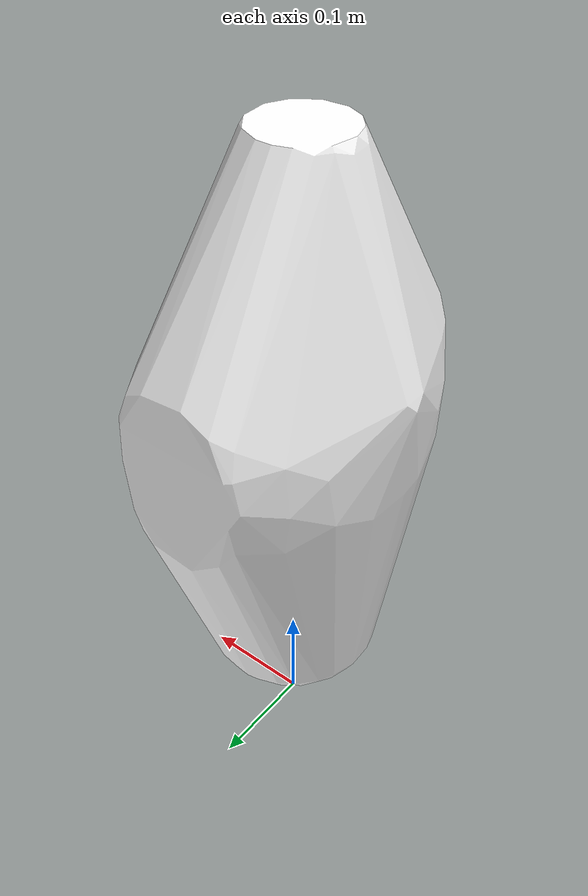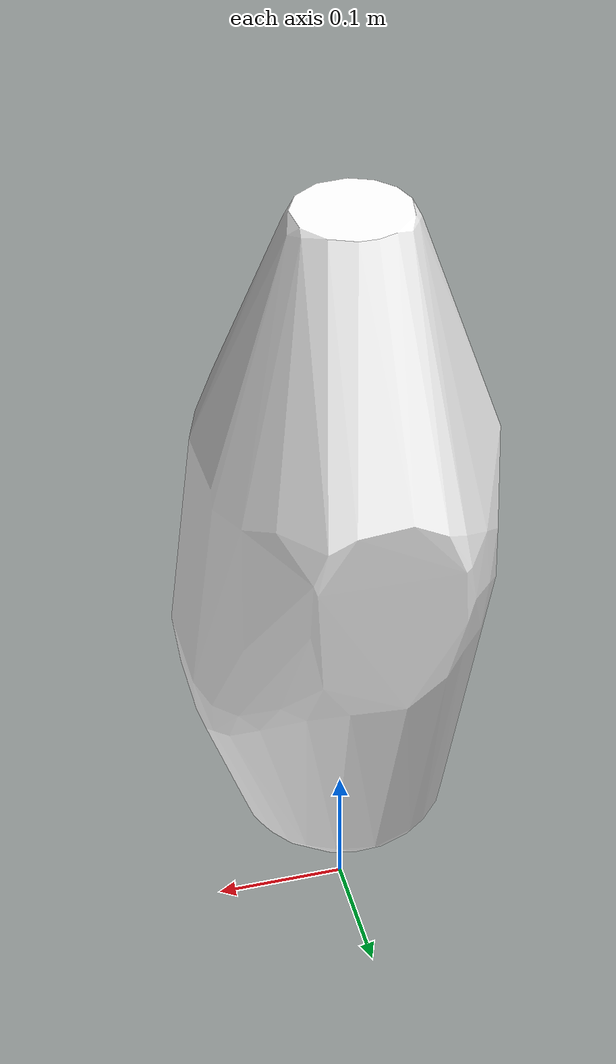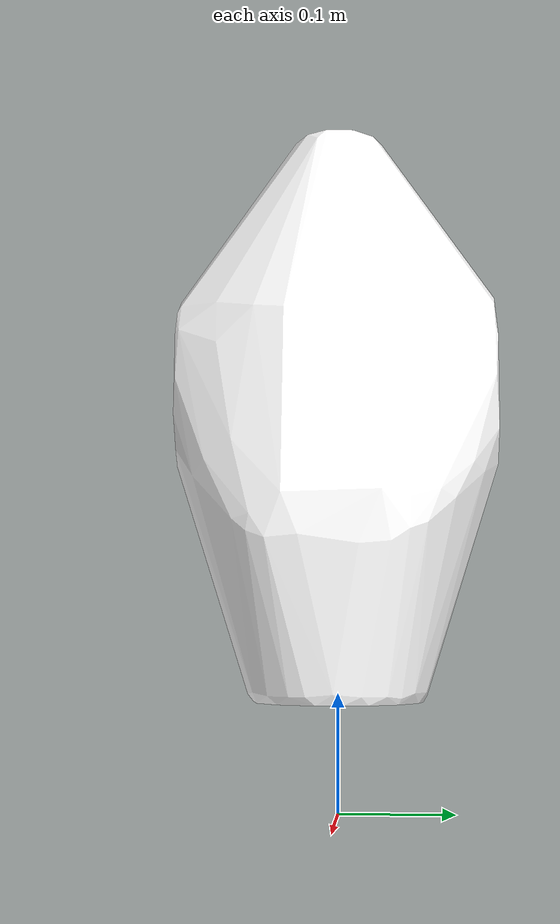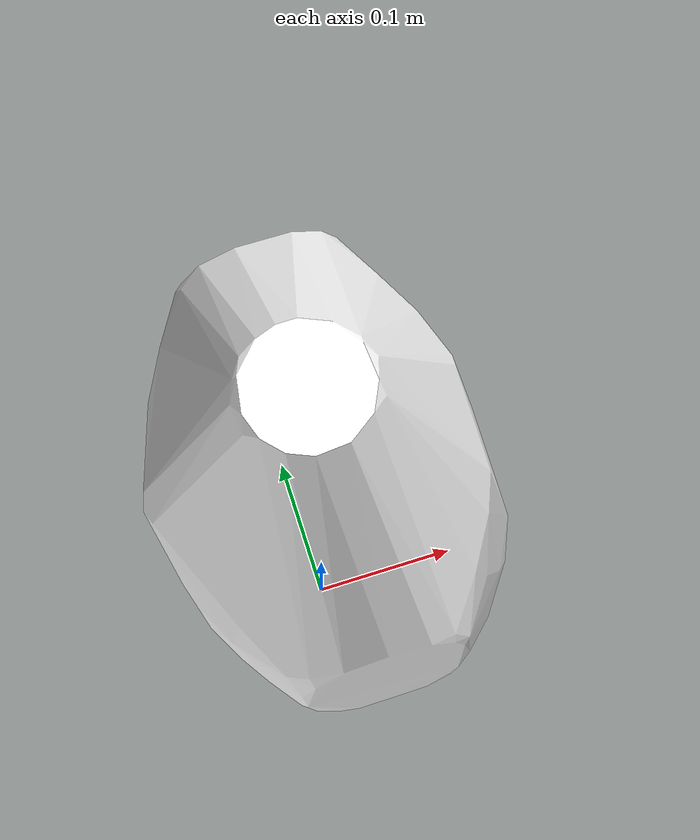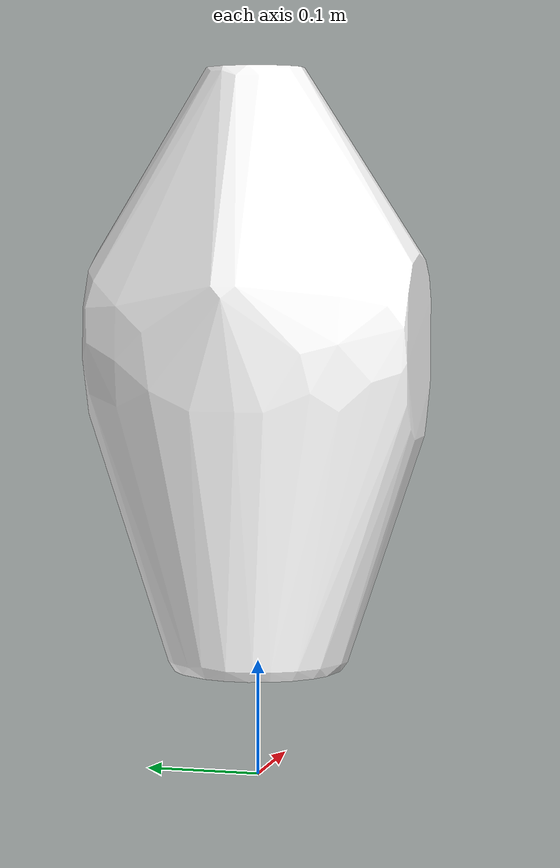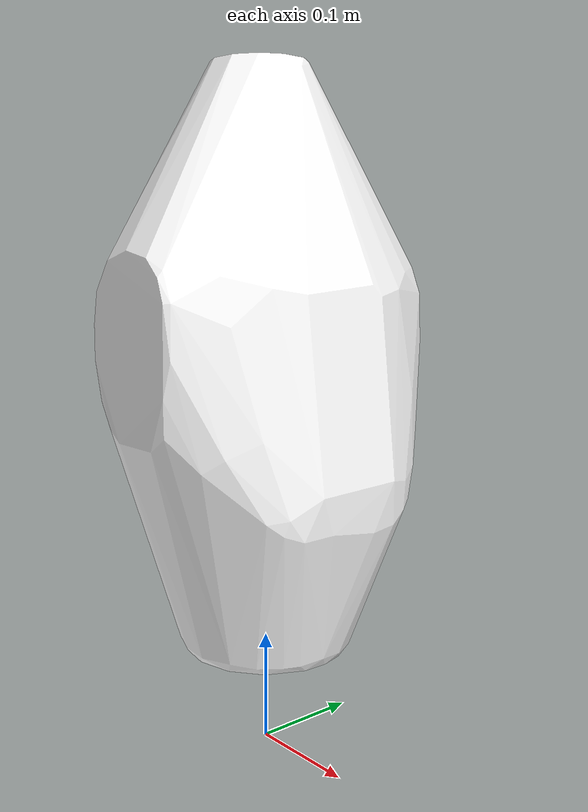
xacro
<?xml version="1.0" ?>
<robot xmlns:xacro="http://www.ros.org/wiki/xacro">
  <link name="torso_base_link">
      <inertial>
        <origin rpy="0 0 0" xyz="0.009452 -0.0097068 -0.041989"/>
        <mass value="1.5697"/>
        <inertia ixx="0.018397" ixy="-6.5897E-07" ixz="0.00030036" iyy="0.013058" iyz="0.00016843" izz="0.0082332"/>
      </inertial>
      <visual>
        <origin rpy="0 0 0" xyz="0 0 0"/>
        <geometry>
          <mesh filename="package://galbot_one_description/meshes/torso/torso_base_link.stl"/>
        </geometry>
        <material name="">
          <color rgba="1 1 1 1"/>
        </material>
      </visual>
      <collision>
        <origin rpy="0 0 0" xyz="0 0 0"/>
        <geometry>
          <mesh filename="package://galbot_one_description/meshes/torso/torso_base_link_convex.stl"/>
        </geometry>
      </collision>
    </link>
</robot>
